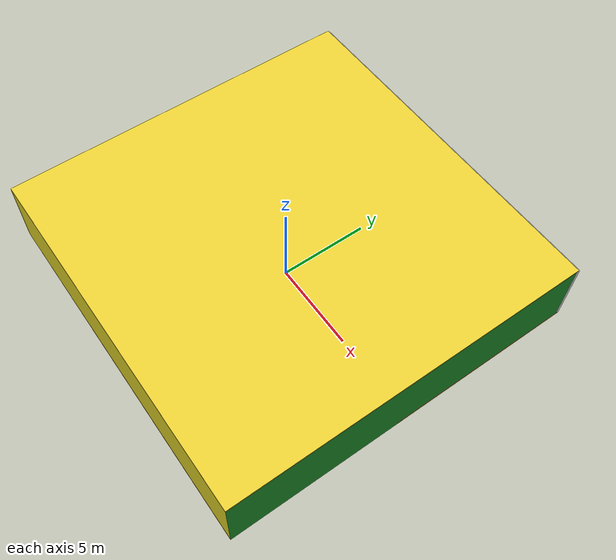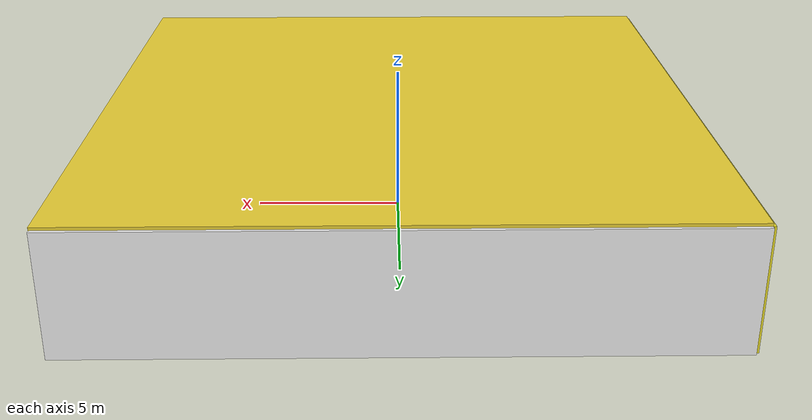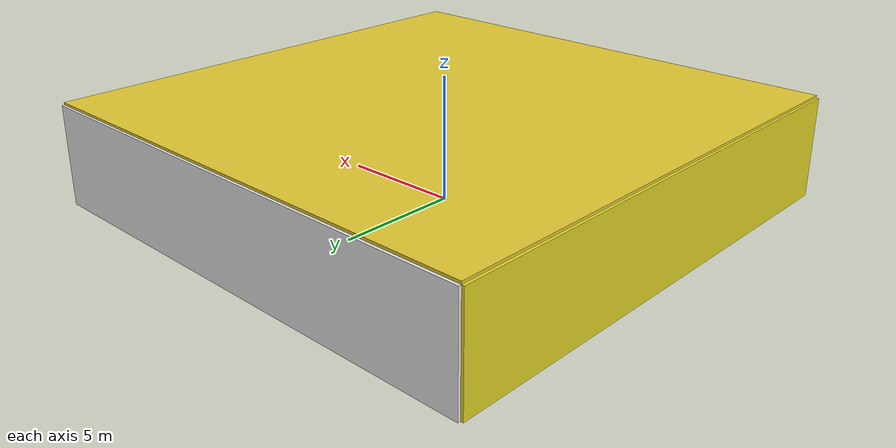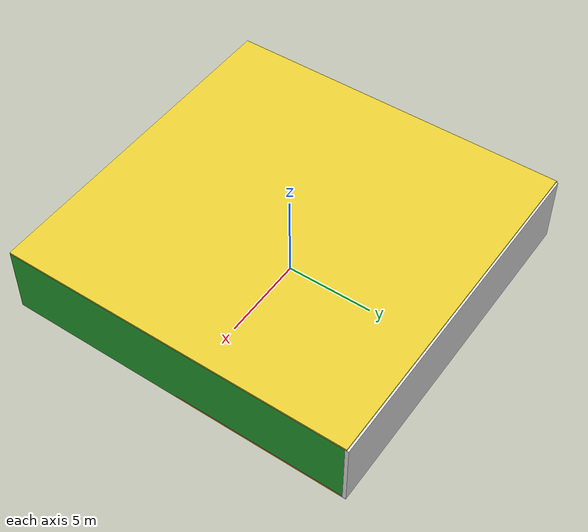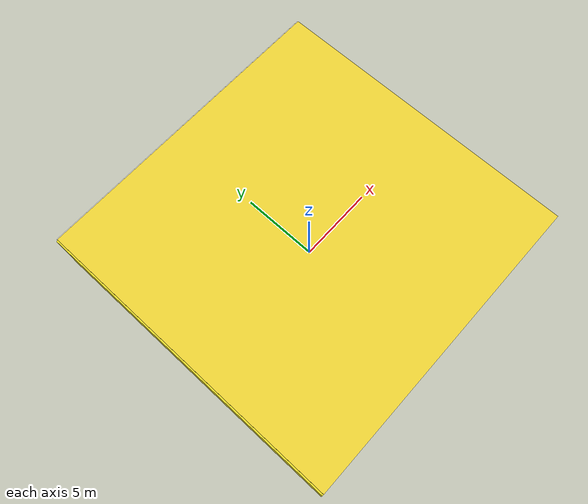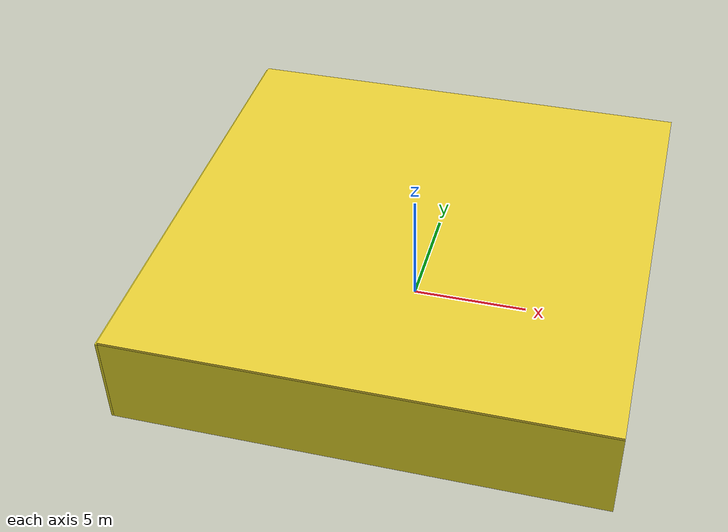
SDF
<sdf version="1.4">
 <world name="default">
  <physics type="ode">
   <max_step_size>0.001</max_step_size>
   <real_time_factor>1</real_time_factor>
   <real_time_update_rate>1000</real_time_update_rate>
   <gravity>0 0 -9.8</gravity>
  </physics>
  <scene><ambient>0.4 0.4 0.4 1</ambient><background>0.7 0.7 0.7 1</background><shadows>1</shadows></scene>
  <model name="Surrounding">
   <static>1</static>
   <link name="Ceiling">
    <collision name="Ceiling_Collision"><geometry><box><size>20 20 0.1</size></box></geometry></collision>
    <visual name="Ceiling_Visual">
     <geometry><box><size>20 20 0.1</size></box></geometry>
     <material>
      <script><uri>file://media/materials/scripts/gazebo.material</uri><name>Gazebo/ZincYellow</name></script>
     </material>
    </visual>
    <pose>0 0 4.05 0 0 0</pose>
   </link>
   <link name="Wall_South">
    <collision name="Wall_South_Collision">
     <geometry><box><size>20 0 4</size></box></geometry>
     <pose>0 0 2 0 -0 0</pose>
    </collision>
    <visual name="Wall_South_Visual">
     <pose>0 0 2 0 -0 0</pose>
     <geometry><box><size>20 0 4</size></box></geometry>
     <material>
      <script><uri>file://media/materials/scripts/gazebo.material</uri><name>Gazebo/YellowGlow</name></script>
     </material>
    </visual>
    <velocity_decay><linear>0</linear><angular>0</angular></velocity_decay>
    <pose>0 -10 0 0 -0 0</pose>
   </link>
   <link name="Wall_East">
    <collision name="Wall_21_Collision">
     <geometry><box><size>20 0 4</size></box></geometry>
     <pose>0 0 2 0 -0 0</pose>
    </collision>
    <visual name="Wall_21_Visual">
     <pose>0 0 2 0 -0 0</pose>
     <geometry><box><size>20 0 4</size></box></geometry>
     <material>
      <script><uri>file://media/materials/scripts/gazebo.material</uri><name>Gazebo/Green</name></script>
     </material>
    </visual>
    <velocity_decay><linear>0</linear><angular>0</angular></velocity_decay>
    <pose>10 0 0 0 -0 1.5708</pose>
   </link>
   <link name="Wall_North">
    <collision name="Wall_22_Collision">
     <geometry><box><size>20 0.2 4</size></box></geometry>
     <pose>0 0 2 0 -0 0</pose>
    </collision>
    <visual name="Wall_22_Visual">
     <pose>0 0 2 0 -0 0</pose>
     <geometry><box><size>20 0.2 4</size></box></geometry>
     <material>
      <script><uri>file://media/materials/scripts/gazebo.material</uri><name>Gazebo/WhiteGlow</name></script>
     </material>
    </visual>
    <velocity_decay><linear>0</linear><angular>0</angular></velocity_decay>
    <pose>0 10 0 0 -0 0</pose>
   </link>
   <link name="Wall_West">
    <collision name="Wall_23_Collision">
     <geometry><box><size>20 0.2 4</size></box></geometry>
     <pose>0 0 2 0 -0 0</pose>
    </collision>
    <visual name="Wall_23_Visual">
     <pose>0 0 2 0 -0 0</pose>
     <geometry><box><size>20 0.2 4</size></box></geometry>
     <material>
      <script><uri>file://media/materials/scripts/gazebo.material</uri><name>Gazebo/YellowGlow</name></script>
     </material>
    </visual>
    <velocity_decay><linear>0</linear><angular>0</angular></velocity_decay>
    <pose>-10 0 0 0 0 -1.5708</pose>
   </link>
   <link name="Ground_link">
    <collision name="collision">
     <pose>0 0 .05 0 -0 0</pose>
     <geometry><box><size>20 20 0.1</size></box></geometry>
    </collision>
    <visual name="visual">
     <pose>0 0 .05 0 -0 0</pose>
     <geometry><box><size>20 20 0.1</size></box></geometry>
     <material>
      <script><uri>file://media/materials/scripts/gazebo.material</uri><name>Gazebo/Orange</name></script>
     </material>
    </visual>
   </link>
   <static>1</static>
  </model>
  <spherical_coordinates>
   <surface_model>EARTH_WGS84</surface_model>
   <latitude_deg>0</latitude_deg>
   <longitude_deg>0</longitude_deg>
   <elevation>0</elevation>
   <heading_deg>0</heading_deg>
  </spherical_coordinates>
  <light name="lightball_0" type="diffuse">
   <diffuse>0.8 0.8 0.8 1</diffuse>
   <specular>0.2 0.2 0.2 1</specular>
   <attenuation>
    <range>100</range>
    <constant>0.7</constant>
    <linear>0.01</linear>
    <quadratic>0.001</quadratic>
   </attenuation>
   <direction>-0.5 0.1 -0.9</direction>
   <pose>-2.71725586115 -1.2700291673 0.785520836745 0 0 0</pose>
  </light>
  <light name="lightball_1" type="diffuse">
   <diffuse>0.8 0.8 0.8 1</diffuse>
   <specular>0.2 0.2 0.2 1</specular>
   <attenuation>
    <range>100</range>
    <constant>0.7</constant>
    <linear>0.01</linear>
    <quadratic>0.001</quadratic>
   </attenuation>
   <direction>-0.5 0.1 -0.9</direction>
   <pose>9.67331947377 -2.50976176737 0.91817509466 0 0 0</pose>
  </light>
  <light name="lightball_2" type="diffuse">
   <diffuse>0.8 0.8 0.8 1</diffuse>
   <specular>0.2 0.2 0.2 1</specular>
   <attenuation>
    <range>100</range>
    <constant>0.7</constant>
    <linear>0.01</linear>
    <quadratic>0.001</quadratic>
   </attenuation>
   <direction>-0.5 0.1 -0.9</direction>
   <pose>-3.41833711478 2.21271264666 3.79093611423 0 0 0</pose>
  </light>
  <include><uri>model://cabinet</uri><pose>-1.08463474068 7.85494025648 0 0 0 2.16874878969</pose></include>
  <include>
   <uri>model://construction_cone</uri>
   <pose>4.4763967777 -4.4895487881 0 0 0 0.177168178004</pose>
  </include>
  <include><uri>model://table</uri><pose>4.45233812128 2.13125233667 0 0 0 0.390152948789</pose></include>
  <include><uri>model://cabinet</uri><pose>5.20341935206 7.93979825827 0 0 0 0.277914375982</pose></include>
  <include><uri>model://cabinet</uri><pose>7.28257248563 0.788176396632 0 0 0 1.19944113026</pose></include>
 </world>
</sdf>

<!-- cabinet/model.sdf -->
<sdf version="1.5">
  <model name="cabinet">
    <static>true</static>
    <link name="cabinet_bottom_plate">
      <inertial>
        <pose>0 0 -1 0 0 0</pose>
        <inertia>
          <ixx>2.050000</ixx>
          <ixy>0</ixy>
          <ixz>0</ixz>
          <iyy>2.050000</iyy>
          <iyz>0</iyz>
          <izz>2.050000</izz>
        </inertia>
        <mass>25.000000</mass>
      </inertial>
      <collision name="cabinet_bottom_plate_geom">
        <pose>0 0 0.010000 0 0 0</pose>
        <geometry>
          <box>
            <size>0.450000 0.450000 0.020000</size>
          </box>
        </geometry>
      </collision>
      <visual name="cabinet_bottom_plate_geom_visual">
        <pose>0 0 0.010000 0 0 0</pose>
        <geometry>
          <box>
            <size>0.450000 0.450000 0.020000</size>
          </box>
        </geometry>
        <material>
          <script>
            <uri>model://media/materials/scripts/gazebo.material</uri>
            <name>Gazebo/Wood</name>
          </script>
        </material>
      </visual>
      <collision name="cabinet_bottom_plate_geom_cabinet_back_plate">
        <pose>0.235000 0 0.510000 0 0 0</pose>
        <geometry>
          <box>
            <size>0.020000 0.450000 1.020000</size>
          </box>
        </geometry>
      </collision>
      <visual name="cabinet_bottom_plate_geom_cabinet_back_plate_visual">
        <pose>0.235000 0 0.510000 0 0 0</pose>
        <geometry>
          <box>
            <size>0.020000 0.450000 1.020000</size>
          </box>
        </geometry>
        <material>
          <script>
            <uri>model://media/materials/scripts/gazebo.material</uri>
            <name>Gazebo/Wood</name>
          </script>
        </material>
      </visual>
      <collision name="cabinet_bottom_plate_geom_cabinet_left_plate">
        <pose>0 0.235000 0.510000 0 0 0</pose>
        <geometry>
          <box>
            <size>0.450000 0.020000 1.020000</size>
          </box>
        </geometry>
      </collision>
      <visual name="cabinet_bottom_plate_geom_cabinet_left_plate_visual">
        <pose>0 0.235000 0.510000 0 0 0</pose>
        <geometry>
          <box>
            <size>0.450000 0.020000 1.020000</size>
          </box>
        </geometry>
        <material>
          <script>
            <uri>model://media/materials/scripts/gazebo.material</uri>
            <name>Gazebo/Wood</name>
          </script>
        </material>
      </visual>
      <collision name="cabinet_bottom_plate_geom_cabinet_middle_plate">
        <pose>0 0 0.510000 0 0 0</pose>
        <geometry>
          <box>
            <size>0.450000 0.450000 0.020000</size>
          </box>
        </geometry>
      </collision>
      <visual name="cabinet_bottom_plate_geom_cabinet_middle_plate_visual">
        <pose>0 0 0.510000 0 0 0</pose>
        <geometry>
          <box>
            <size>0.450000 0.450000 0.020000</size>
          </box>
        </geometry>
        <material>
          <script>
            <uri>model://media/materials/scripts/gazebo.material</uri>
            <name>Gazebo/Wood</name>
          </script>
        </material>
      </visual>
      <collision name="cabinet_bottom_plate_geom_cabinet_right_plate">
        <pose>0 -0.235000 0.510000 0 0 0</pose>
        <geometry>
          <box>
            <size>0.450000 0.020000 1.020000</size>
          </box>
        </geometry>
      </collision>
      <visual name="cabinet_bottom_plate_geom_cabinet_right_plate_visual">
        <pose>0 -0.235000 0.510000 0 0 0</pose>
        <geometry>
          <box>
            <size>0.450000 0.020000 1.020000</size>
          </box>
        </geometry>
        <material>
          <script>
            <uri>model://media/materials/scripts/gazebo.material</uri>
            <name>Gazebo/Wood</name>
          </script>
        </material>
      </visual>
      <collision name="cabinet_bottom_plate_geom_cabinet_top_plate">
        <pose>0 0 1.010000 0 0 0</pose>
        <geometry>
          <box>
            <size>0.450000 0.450000 0.020000</size>
          </box>
        </geometry>
      </collision>
      <visual name="cabinet_bottom_plate_geom_cabinet_top_plate_visual">
        <pose>0 0 1.010000 0 0 0</pose>
        <geometry>
          <box>
            <size>0.450000 0.450000 0.020000</size>
          </box>
        </geometry>
        <material>
          <script>
            <uri>model://media/materials/scripts/gazebo.material</uri>
            <name>Gazebo/Wood</name>
          </script>
        </material>
      </visual>
    </link>
  </model>
</sdf>

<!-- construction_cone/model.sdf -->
<sdf version="1.5">
  <model name="Construction Cone">
    <link name="link">
      <collision name="collision">
        <geometry>
          <mesh>
            <scale>10 10 10</scale>
            <uri>file://isr-testbed/construction_cone/meshes/construction_cone.dae</uri>
          </mesh>
        </geometry>
      </collision>
      <visual name="visual">
        <geometry>
          <mesh>
            <scale>10 10 10</scale>
            <uri>file://isr-testbed/construction_cone/meshes/construction_cone.dae</uri>
          </mesh>
        </geometry>
      </visual>
    </link>
  </model>
</sdf>

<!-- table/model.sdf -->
<sdf version="1.5">
  <model name="table">
    <static>true</static>
    <link name="link">
      <collision name="surface">
        <pose>0 0 1.0 0 0 0</pose>
        <geometry>
          <box>
            <size>1.5 0.8 0.03</size>
          </box>
        </geometry>
        <surface>
          <friction>
            <ode>
              <mu>0.6</mu>
              <mu2>0.6</mu2>
            </ode>
          </friction>
        </surface>
      </collision>
      <visual name="visual1">
        <pose>0 0 1.0 0 0 0</pose>
        <geometry>
          <box>
            <size>1.5 0.8 0.03</size>
          </box>
        </geometry>
        <material>
          <script>
            <uri>model://media/materials/scripts/gazebo.material</uri>
            <name>Gazebo/Wood</name>
          </script>
        </material>
      </visual>
      <collision name="front_left_leg">
        <pose>0.68 0.38 0.5 0 0 0</pose>
        <geometry>
          <cylinder>
            <radius>0.02</radius>
            <length>1.0</length>
          </cylinder>
        </geometry>
      </collision>
      <visual name="front_left_leg">
        <pose>0.68 0.38 0.5 0 0 0</pose>
        <geometry>
          <cylinder>
            <radius>0.02</radius>
            <length>1.0</length>
          </cylinder>
        </geometry>
        <material>
          <script>
            <uri>model://media/materials/scripts/gazebo.material</uri>
            <name>Gazebo/Grey</name>
          </script>
        </material>
      </visual>
      <collision name="front_right_leg">
        <pose>0.68 -0.38 0.5 0 0 0</pose>
        <geometry>
          <cylinder>
            <radius>0.02</radius>
            <length>1.0</length>
          </cylinder>
        </geometry>
      </collision>
      <visual name="front_right_leg">
        <pose>0.68 -0.38 0.5 0 0 0</pose>
        <geometry>
          <cylinder>
            <radius>0.02</radius>
            <length>1.0</length>
          </cylinder>
        </geometry>
        <material>
          <script>
            <uri>model://media/materials/scripts/gazebo.material</uri>
            <name>Gazebo/Grey</name>
          </script>
        </material>
      </visual>
      <collision name="back_right_leg">
        <pose>-0.68 -0.38 0.5 0 0 0</pose>
        <geometry>
          <cylinder>
            <radius>0.02</radius>
            <length>1.0</length>
          </cylinder>
        </geometry>
      </collision>
      <visual name="back_right_leg">
        <pose>-0.68 -0.38 0.5 0 0 0</pose>
        <geometry>
          <cylinder>
            <radius>0.02</radius>
            <length>1.0</length>
          </cylinder>
        </geometry>
        <material>
          <script>
            <uri>model://media/materials/scripts/gazebo.material</uri>
            <name>Gazebo/Grey</name>
          </script>
        </material>
      </visual>
      <collision name="back_left_leg">
        <pose>-0.68 0.38 0.5 0 0 0</pose>
        <geometry>
          <cylinder>
            <radius>0.02</radius>
            <length>1.0</length>
          </cylinder>
        </geometry>
      </collision>
      <visual name="back_left_leg">
        <pose>-0.68 0.38 0.5 0 0 0</pose>
        <geometry>
          <cylinder>
            <radius>0.02</radius>
            <length>1.0</length>
          </cylinder>
        </geometry>
        <material>
          <script>
            <uri>model://media/materials/scripts/gazebo.material</uri>
            <name>Gazebo/Grey</name>
          </script>
        </material>
      </visual>
    </link>
  </model>
</sdf>
